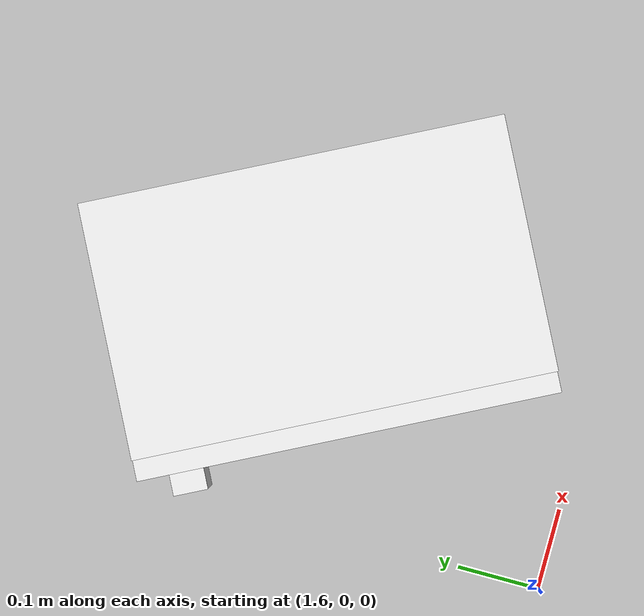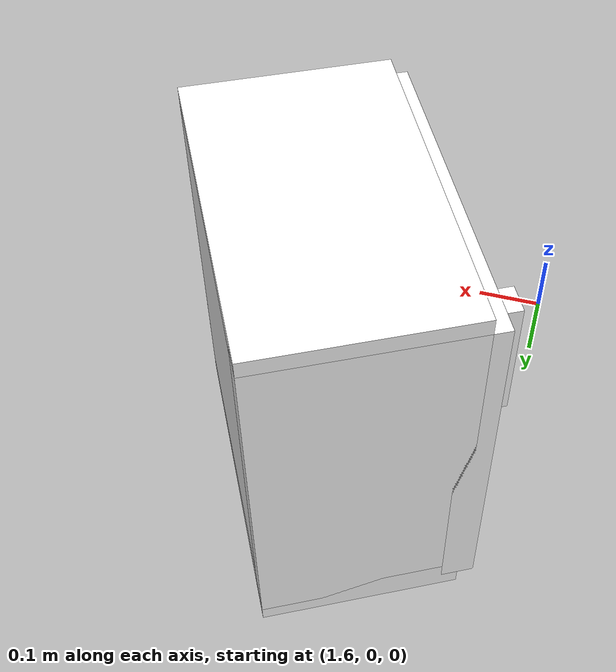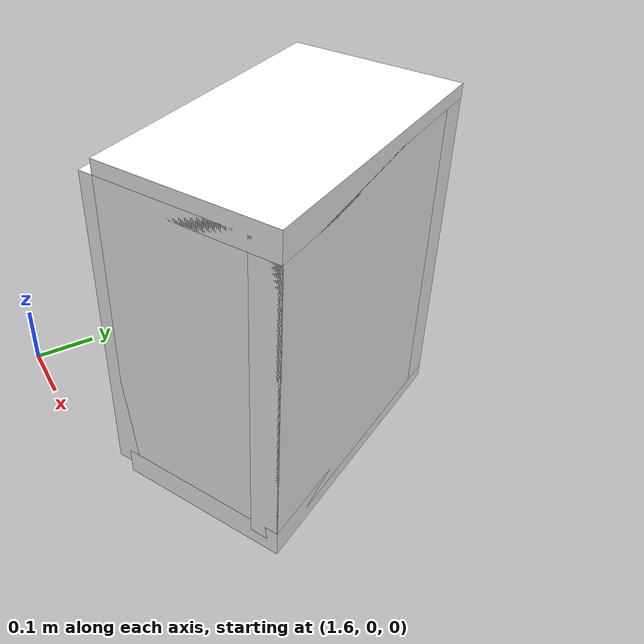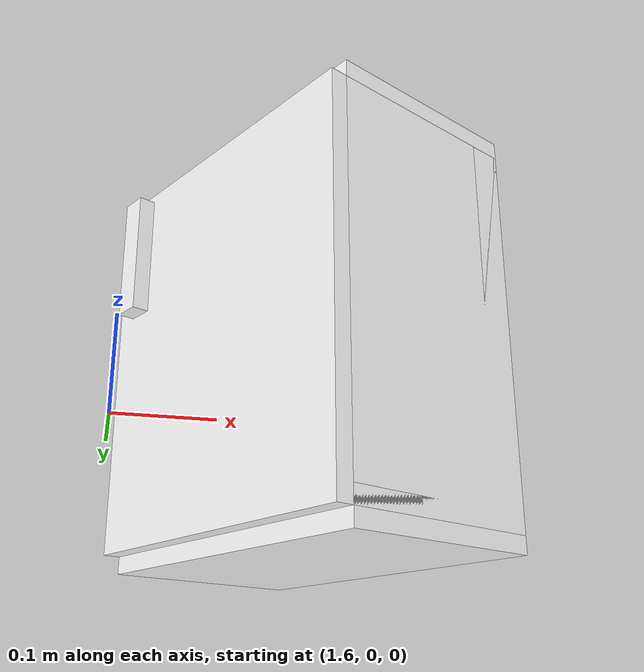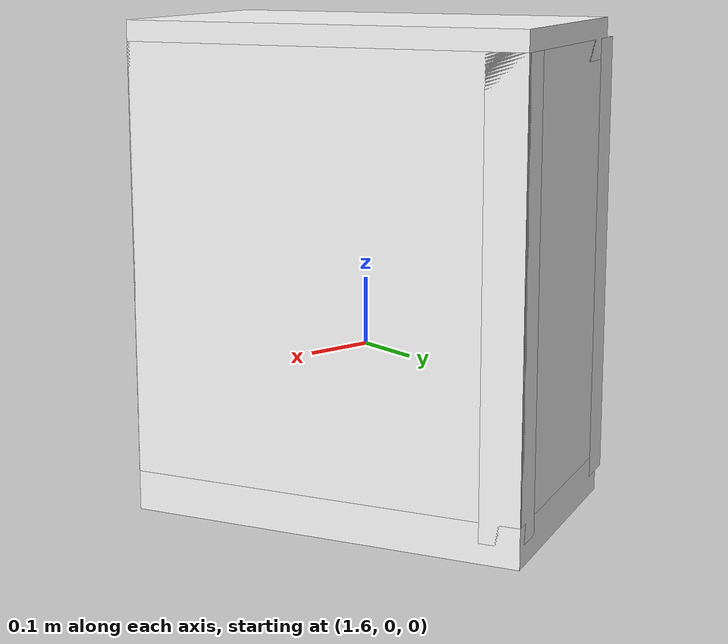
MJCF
<mujoco model="cabinet">
    <compiler angle="radian" eulerseq='zxy' />
    <option gravity = "0 0 0" />
    <option>
        <flag contact = "disable"/>
    </option>
    <statistic	extent="1.0" center="0.0 0.0 0.0"/>
    <visual>
        <map fogstart="3" fogend="5" force="0.1" znear=" 0.100000 " zfar=" 12.000000 "/>
    </visual>
    <size njmax="500" nconmax="100" />
    <actuator>
        <velocity joint="bottom_left_hinge" name="viva_revolution" kv='10'></velocity>
    </actuator>
    <asset>
        <texture builtin="flat" name="tabletex" height="32" width="32" rgb1="1 1 1" type="cube"></texture>
        <texture builtin="flat" name="objtex" height="32" width="32" rgb1="1 1 1" type="cube"></texture>
        <texture builtin="flat" name="handletex" height="32" width="32" rgb1="1 1 1" type="cube"></texture>
        <texture builtin="flat" name="wallpaper" height="32" width="32" rgb1="1 1 1" type="cube"></texture>
        <material name="geomTable" shininess="0.03" specular="0.75" texture="tabletex"></material>
        <material name="geomObj" shininess="0.03" specular="0.75" texture="objtex"></material>
        <material name="geomHandle" shininess="0.03" specular="0.75" texture="handletex"></material>
        <material name="bg" shininess="0.03" specular="0.75" texture="wallpaper"></material>
    </asset>
    <worldbody>
            <body name="cabinet_bottom" pos= " 1.874523 0.353506 -0.058931 "  quat= " -0.235290 0.000000 0.000000 0.971925" >
                <inertial pos="0 0 0" mass="1" diaginertia="1 1 1" />
                <geom size= " 0.144668 0.240110 0.024013 "  type="box" material="geomObj" name="b"/>
                <body name="cabinet_left" pos= " 0.000000 -0.216097 0.267827 " >
                    <inertial pos="0 0 0" mass="1" diaginertia="1 1 1" />
                    <geom size= " 0.144668 0.024013 0.267827 "  type="box" material="geomObj" name="c" />
                </body>
                <body name="cabinet_right" pos= " 0.000000 0.216097 0.267827 " >
                    <inertial pos="0 0 0" mass="1" diaginertia="1 1 1" />
                    <geom size= " 0.144668 0.024013 0.267827 "  type="box" material="geomObj" name="d" />
                </body>
                <body name="cabinet_top" pos= " 0.000000 0.000000 0.535654 " >
                    <inertial pos="0 0 0" mass="1" diaginertia="1 1 1" />
                    <geom size= " 0.144668 0.240110 0.024013 "  type="box" material="geomObj" name="e"/>
                </body>
                <body name="cabinet_back" pos= " -0.120655 0.000000 0.267827 "  >
                    <inertial pos="0 0 0" mass="1" diaginertia="1 1 1" />
                    <geom size= " 0.024013 0.240110 0.267827 "  type="box" material="geomObj" name="f" />
                </body>
                <body name="cabinet_left_hinge" pos= " 0.144668 0.240110 0.267827 " >
                    <inertial pos= " 0.000000 -0.240110 0.000000 "  mass="1" diaginertia="1 1 1" />
                    <joint name="bottom_left_hinge" type="hinge" pos="0 0 0" axis="0 0 1" limited="true" range= "0 2.3"  />
                    <geom size= " 0.024013 0.240110 0.267827 "  pos= " 0.000000 -0.240110 0.000000 "  type="box" material="geomObj" name="g"/>
                    <body name="handle_link" pos= " 0.036167 -0.424684 0.166154 " >
                        <inertial pos="0 0 0" mass="1" diaginertia="1 1 1" />
                        <geom size= " 0.012310 0.019546 0.089998 "  type="box" material="geomHandle" name="h"/>
                    </body>
                </body>
            </body>
        <body name="external_camera_body_0" pos="0.0 0 0.00">
            <camera euler="-1.57 1.57 0.0" fovy=" 54.280851 " name="external_camera_0" pos="0.0 0 0"></camera>
            <inertial pos= " 0.00 0.0 0.000000 " mass="1" diaginertia="1 1 1" />
            <joint name="cam_j" pos="0.0 0 0" axis = "1 0 0" type="free" />
        </body>
    </worldbody>
</mujoco>
